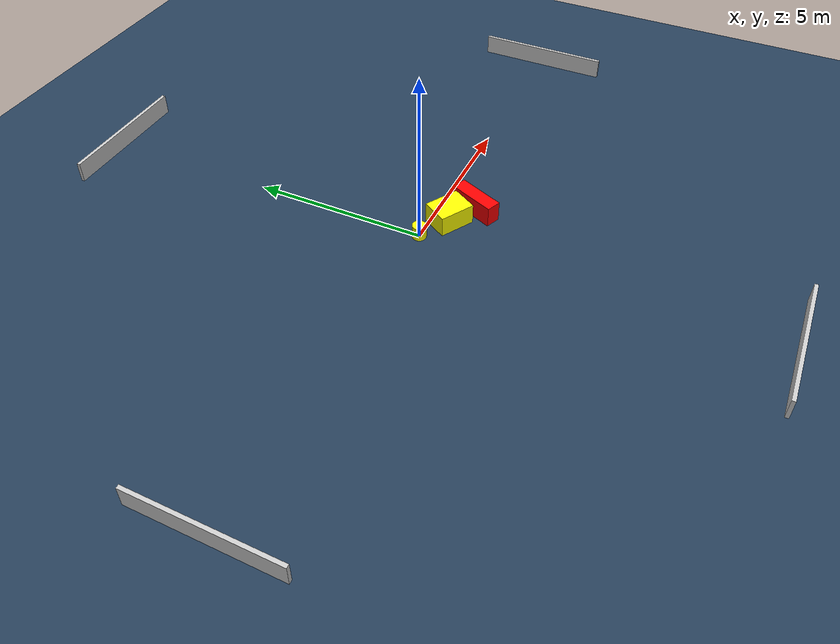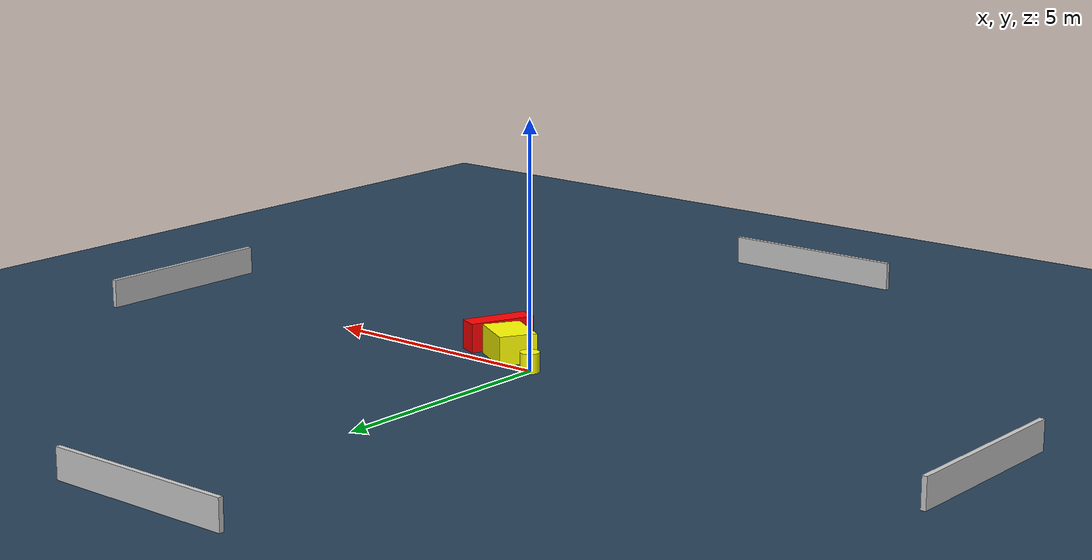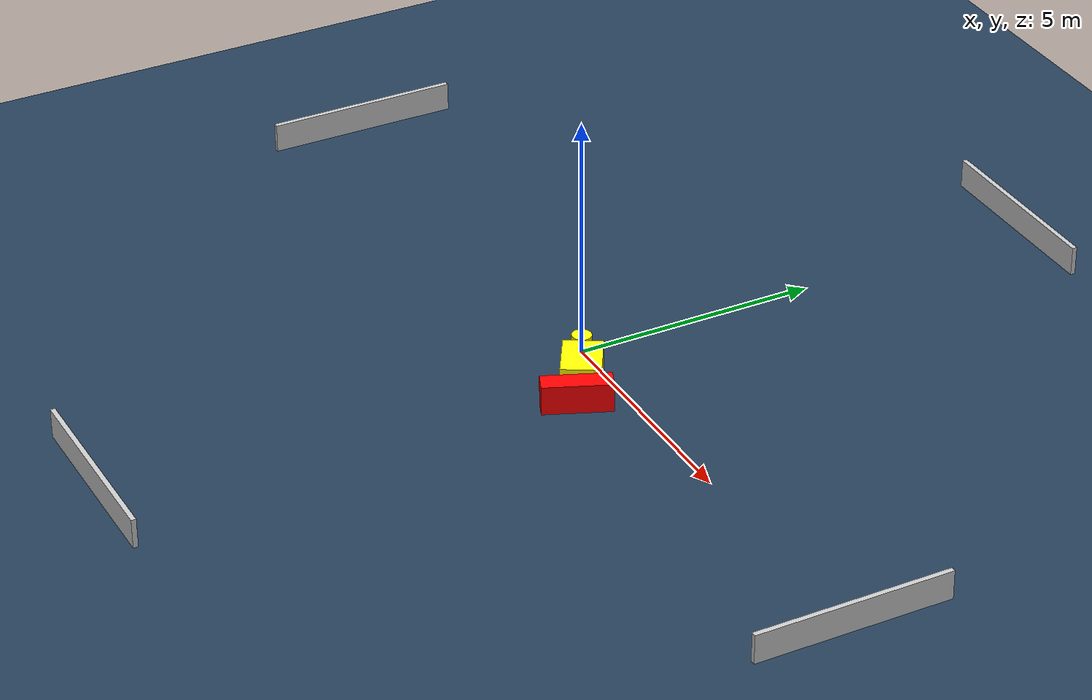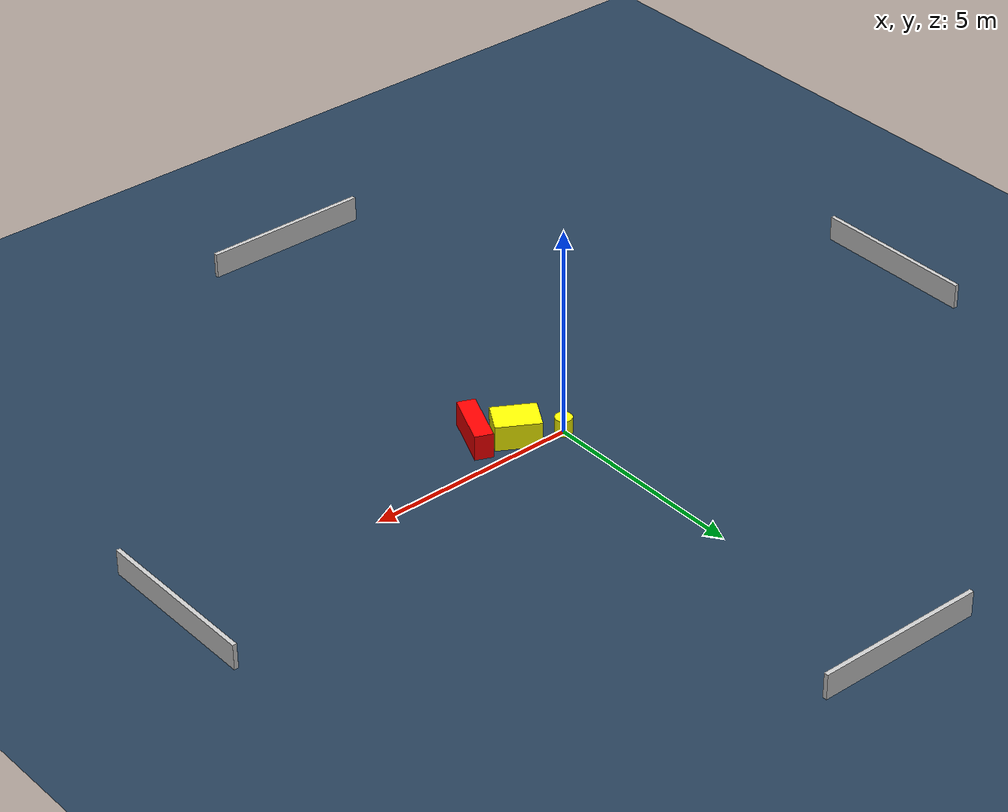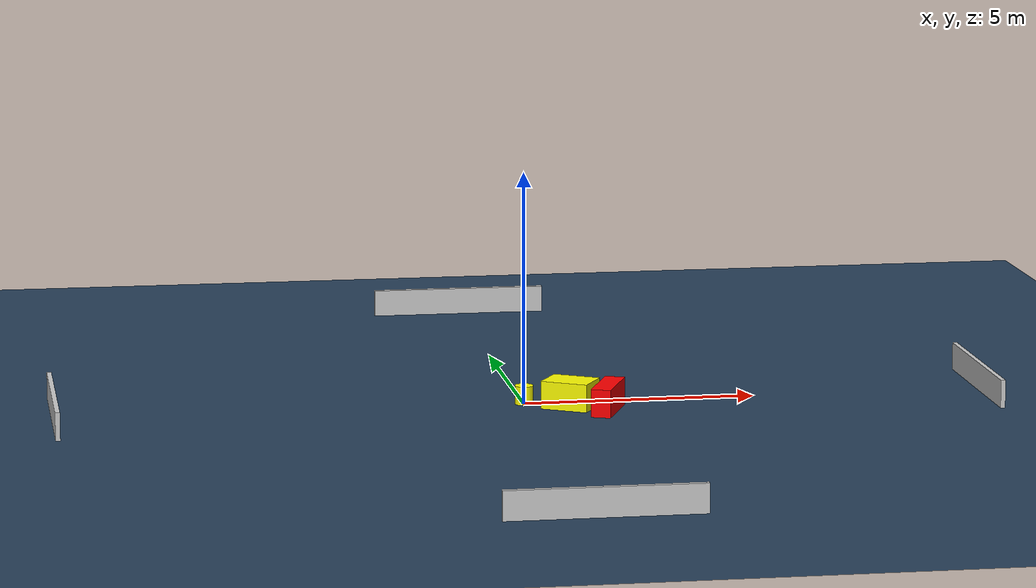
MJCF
<?xml version="1.0" ?>
<mujoco model="generated_environment">
  <option timestep="0.01" integrator="RK4" cone="elliptic"/>
  <default>
    <geom density="1"/>
  </default>
  <asset>
    <texture builtin="gradient" height="3072" name="skybox" rgb1="0.3 0.5 0.7" rgb2="0 0 0" type="skybox" width="512"/>
    <texture builtin="checker" height="300" name="groundplane" rgb1="0.2 0.3 0.4" rgb2="0.1 0.2 0.3" type="2d" width="300"/>
    <material name="groundplane" reflectance="0.2" texrepeat="5 5" texture="groundplane"/>
  </asset>
  <worldbody>
    <light dir="0 0 -1" directional="true" pos="0 0 1.5"/>
    <geom condim="3" friction="0.5 0.005 0.001" material="groundplane" name="floor" pos="0 0 0" size="0 0 0.05" type="plane"/>
    <body name="walls">
      <geom name="wall_1" condim="4" pos="-10.0 0.0 0.3" rgba="0.800000011920929 0.800000011920929 0.800000011920929 1.0" size="0.05 2.0 0.3" type="box"/>
      <geom name="wall_2" condim="4" pos="10.0 0.0 0.3" rgba="0.800000011920929 0.800000011920929 0.800000011920929 1.0" size="0.05 2.0 0.3" type="box"/>
      <geom name="wall_3" condim="4" pos="0.0 -10.0 0.3" rgba="0.800000011920929 0.800000011920929 0.800000011920929 1.0" size="2.0 0.05 0.3" type="box"/>
      <geom name="wall_4" condim="4" pos="0.0 10.0 0.3" rgba="0.800000011920929 0.800000011920929 0.800000011920929 1.0" size="2.0 0.05 0.3" type="box"/>
    </body>
    <body name="robot">
      <joint name="joint_x" type="slide" pos="0 0 0" axis="1 0 0"/>
      <joint name="joint_y" type="slide" pos="0 0 0" axis="0 1 0"/>
      <geom name="robot" type="cylinder" pos="0.0 0.0 0.2" size="0.2 0.2 0.0" mass="5.0" friction="1.0 0.005 0.0001" condim="4" rgba="1.0 1.0 0.0 1.0"/>
    </body>
    <body name="obstacle_1_movable">
      <geom name="obstacle_1_movable" condim="4" pos="0.9228024188217859 -0.48149890798266076 0.3" euler="0 0 329.43521320325357" friction="0.0 0.005 0.001" rgba="1.0 1.0 0.0 1.0" size="0.5189700163833979 0.3958767595462216 0.3" type="box" mass="0.1"/>
      <joint type="free"/>
    </body>
    <body name="obstacle_2_static">
      <geom name="obstacle_2_static" condim="4" pos="1.6493862231018728 -0.9726615068022046 0.3" euler="0 0 157.18548970675752" friction="0.0 0.005 0.001" rgba="1.0 0.0 0.0 1.0" size="0.21290114239285696 0.691179586487789 0.3" type="box"/>
    </body>
  </worldbody>
  <actuator>
    <motor name="actuator_x" joint="joint_x" gear="1" ctrlrange="-1 1"/>
    <motor name="actuator_y" joint="joint_y" gear="1" ctrlrange="-1 1"/>
  </actuator>
</mujoco>
